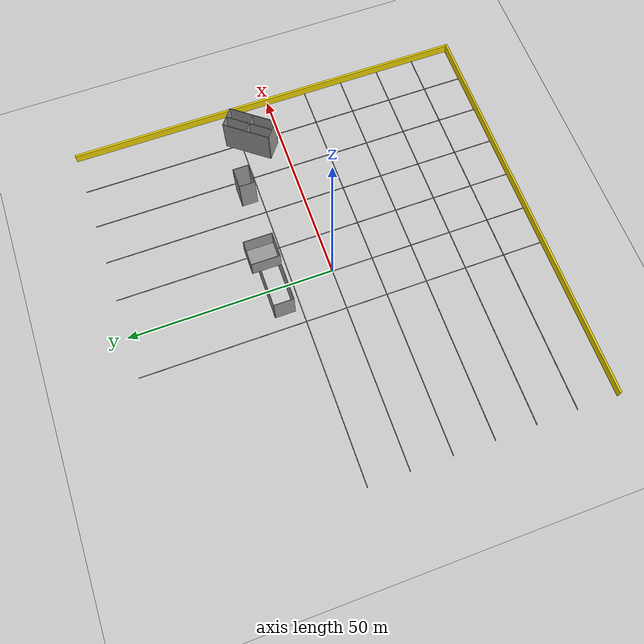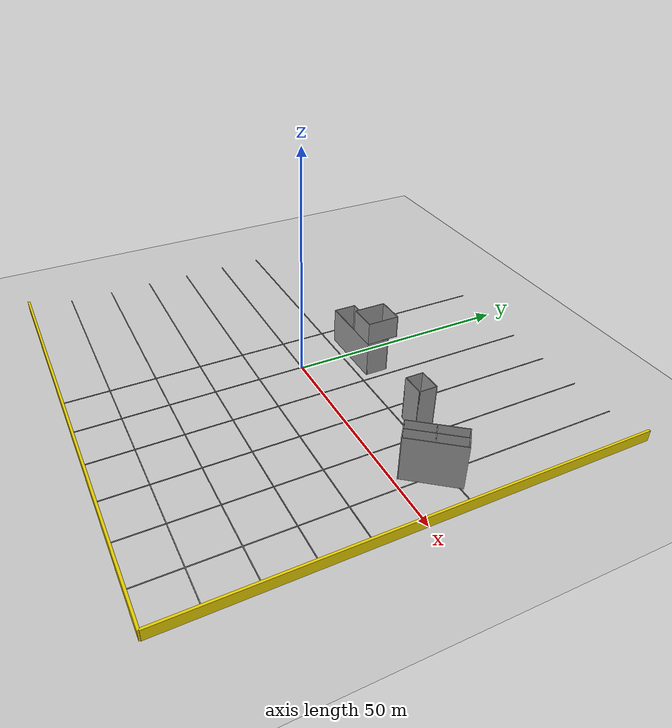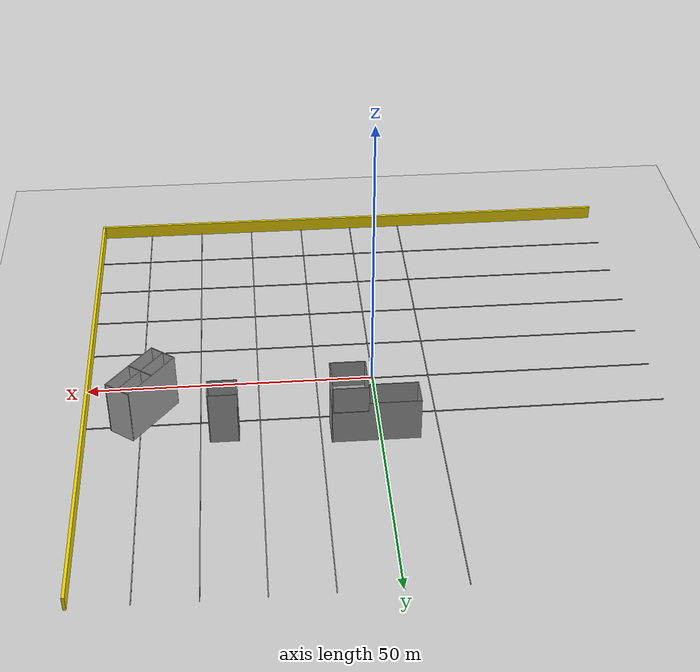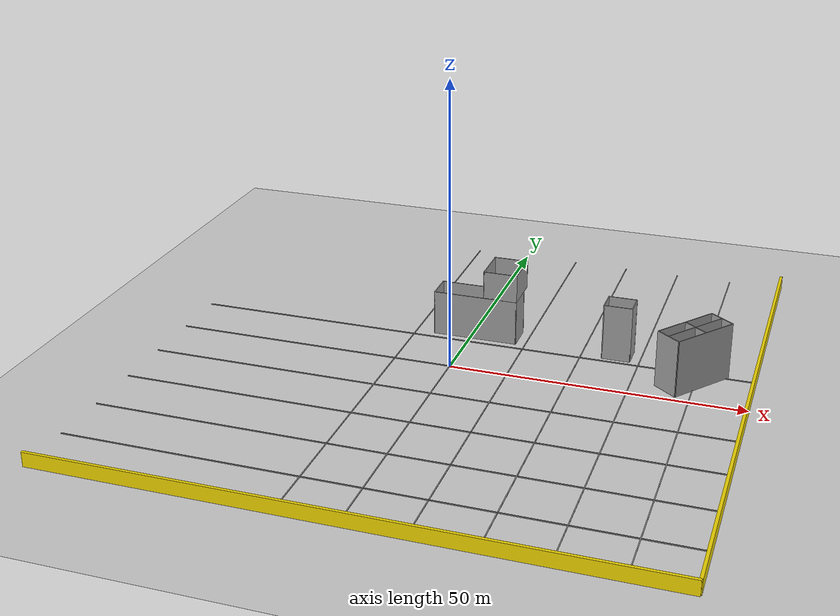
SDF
<sdf version="1.7">
 <world name="default">
  <model name="ground_plane">
   <static>1</static>
   <link name="link">
    <collision name="collision">
     <geometry><plane><normal>0 0 1</normal><size>100 100</size></plane></geometry>
     <surface><friction><ode><mu>100</mu><mu2>50</mu2></ode></friction></surface>
    </collision>
    <visual name="visual">
     <cast_shadows>0</cast_shadows>
     <geometry><plane><normal>0 0 1</normal><size>100 100</size></plane></geometry>
     <material>
      <script><uri>file://media/materials/scripts/gazebo.material</uri><name>Gazebo/Grey</name></script>
     </material>
    </visual>
   </link>
  </model>
  <model name="gridline100m">
   <pose>0.007876 -6.97538 0 0 -0 0</pose>
   <link name="Wall_2">
    <collision name="Wall_2_Collision">
     <geometry><box><size>100 0.15 0.15</size></box></geometry>
     <pose>0 0 0.075 0 -0 0</pose>
    </collision>
    <visual name="Wall_2_Visual">
     <pose>0 0 0.075 0 -0 0</pose>
     <geometry><box><size>100 0.15 0.15</size></box></geometry>
     <material>
      <script><uri>file://media/materials/scripts/gazebo.material</uri><name>Gazebo/Grey</name></script>
      <ambient>0 0 0 1</ambient>
     </material>
     <meta><layer>0</layer></meta>
    </visual>
    <pose>2e-06 -3.05812 0 0 -0 0</pose>
   </link>
   <static>1</static>
  </model>
  <model name="gridline100m_clone">
   <pose>0.013 3.08479 0 0 -0 0</pose>
   <link name="Wall_2">
    <collision name="Wall_2_Collision">
     <geometry><box><size>100 0.15 0.15</size></box></geometry>
     <pose>0 0 0.075 0 -0 0</pose>
    </collision>
    <visual name="Wall_2_Visual">
     <pose>0 0 0.075 0 -0 0</pose>
     <geometry><box><size>100 0.15 0.15</size></box></geometry>
     <material>
      <script><uri>file://media/materials/scripts/gazebo.material</uri><name>Gazebo/Grey</name></script>
      <ambient>0 0 0 1</ambient>
     </material>
     <meta><layer>0</layer></meta>
    </visual>
    <pose>2e-06 -3.05812 0 0 -0 0</pose>
   </link>
   <static>1</static>
  </model>
  <model name="gridline100m_clone_0">
   <pose>-0.011254 13.0129 0 0 -0 0</pose>
   <link name="Wall_2">
    <collision name="Wall_2_Collision">
     <geometry><box><size>100 0.15 0.15</size></box></geometry>
     <pose>0 0 0.075 0 -0 0</pose>
    </collision>
    <visual name="Wall_2_Visual">
     <pose>0 0 0.075 0 -0 0</pose>
     <geometry><box><size>100 0.15 0.15</size></box></geometry>
     <material>
      <script><uri>file://media/materials/scripts/gazebo.material</uri><name>Gazebo/Grey</name></script>
      <ambient>0 0 0 1</ambient>
     </material>
     <meta><layer>0</layer></meta>
    </visual>
    <pose>2e-06 -3.05812 0 0 -0 0</pose>
   </link>
   <static>1</static>
  </model>
  <model name="gridline100m_clone_0_clone">
   <link name="Wall_2">
    <pose>2e-06 -3.05812 0 0 -0 1.571</pose>
    <inertial>
     <mass>1</mass>
     <inertia><ixx>1</ixx><ixy>0</ixy><ixz>0</ixz><iyy>1</iyy><iyz>0</iyz><izz>1</izz></inertia>
    </inertial>
    <visual name="Wall_2_Visual">
     <pose>0 0 0.075 0 -0 0</pose>
     <geometry><box><size>100 0.15 0.15</size></box></geometry>
     <material>
      <script><uri>file://media/materials/scripts/gazebo.material</uri><name>Gazebo/Grey</name></script>
      <ambient>0 0 0 1</ambient>
      <shader type="pixel"><normal_map>__default__</normal_map></shader>
      <diffuse>0.7 0.7 0.7 1</diffuse>
      <specular>0.01 0.01 0.01 1</specular>
      <emissive>0 0 0 1</emissive>
     </material>
     <meta><layer>0</layer></meta>
    </visual>
    <collision name="Wall_2_Collision">
     <pose>0 0 0.075 0 -0 0</pose>
     <geometry><box><size>100 0.15 0.15</size></box></geometry>
     <surface>
      <friction>
       <ode><mu>1</mu><mu2>1</mu2><fdir1>0 0 0</fdir1><slip1>0</slip1><slip2>0</slip2></ode>
       <torsional>
        <coefficient>1</coefficient>
        <patch_radius>0</patch_radius>
        <surface_radius>0</surface_radius>
        <use_patch_radius>1</use_patch_radius>
        <ode><slip>0</slip></ode>
       </torsional>
      </friction>
      <bounce><restitution_coefficient>0</restitution_coefficient><threshold>1e+06</threshold></bounce>
      <contact>
       <collide_without_contact>0</collide_without_contact>
       <collide_without_contact_bitmask>1</collide_without_contact_bitmask>
       <collide_bitmask>1</collide_bitmask>
       <ode>
        <soft_cfm>0</soft_cfm>
        <soft_erp>0.2</soft_erp>
        <kp>1e+13</kp>
        <kd>1</kd>
        <max_vel>0.01</max_vel>
        <min_depth>0</min_depth>
       </ode>
       <bullet>
        <split_impulse>1</split_impulse>
        <split_impulse_penetration_threshold>-0.01</split_impulse_penetration_threshold>
        <soft_cfm>0</soft_cfm>
        <soft_erp>0.2</soft_erp>
        <kp>1e+13</kp>
        <kd>1</kd>
       </bullet>
      </contact>
     </surface>
    </collision>
   </link>
   <static>1</static>
   <pose>9.93727 3.17557 0 0 -0 0</pose>
  </model>
  <model name="gridline100m_clone_0_clone_clone">
   <link name="Wall_2">
    <pose>2e-06 -3.05812 0 0 -0 1.571</pose>
    <inertial>
     <mass>1</mass>
     <inertia><ixx>1</ixx><ixy>0</ixy><ixz>0</ixz><iyy>1</iyy><iyz>0</iyz><izz>1</izz></inertia>
    </inertial>
    <visual name="Wall_2_Visual">
     <pose>0 0 0.075 0 -0 0</pose>
     <geometry><box><size>100 0.15 0.15</size></box></geometry>
     <material>
      <script><uri>file://media/materials/scripts/gazebo.material</uri><name>Gazebo/Grey</name></script>
      <ambient>0 0 0 1</ambient>
      <shader type="pixel"><normal_map>__default__</normal_map></shader>
      <diffuse>0.7 0.7 0.7 1</diffuse>
      <specular>0.01 0.01 0.01 1</specular>
      <emissive>0 0 0 1</emissive>
     </material>
     <meta><layer>0</layer></meta>
    </visual>
    <collision name="Wall_2_Collision">
     <pose>0 0 0.075 0 -0 0</pose>
     <geometry><box><size>100 0.15 0.15</size></box></geometry>
     <surface>
      <friction>
       <ode><mu>1</mu><mu2>1</mu2><fdir1>0 0 0</fdir1><slip1>0</slip1><slip2>0</slip2></ode>
       <torsional>
        <coefficient>1</coefficient>
        <patch_radius>0</patch_radius>
        <surface_radius>0</surface_radius>
        <use_patch_radius>1</use_patch_radius>
        <ode><slip>0</slip></ode>
       </torsional>
      </friction>
      <bounce><restitution_coefficient>0</restitution_coefficient><threshold>1e+06</threshold></bounce>
      <contact>
       <collide_without_contact>0</collide_without_contact>
       <collide_without_contact_bitmask>1</collide_without_contact_bitmask>
       <collide_bitmask>1</collide_bitmask>
       <ode>
        <soft_cfm>0</soft_cfm>
        <soft_erp>0.2</soft_erp>
        <kp>1e+13</kp>
        <kd>1</kd>
        <max_vel>0.01</max_vel>
        <min_depth>0</min_depth>
       </ode>
       <bullet>
        <split_impulse>1</split_impulse>
        <split_impulse_penetration_threshold>-0.01</split_impulse_penetration_threshold>
        <soft_cfm>0</soft_cfm>
        <soft_erp>0.2</soft_erp>
        <kp>1e+13</kp>
        <kd>1</kd>
       </bullet>
      </contact>
     </surface>
    </collision>
   </link>
   <static>1</static>
   <pose>-0.08355 3.18147 0 0 -0 0</pose>
  </model>
  <model name="gridline100m_clone_0_clone_clone_0">
   <link name="Wall_2">
    <pose>2e-06 -3.05812 0 0 -0 1.571</pose>
    <inertial>
     <mass>1</mass>
     <inertia><ixx>1</ixx><ixy>0</ixy><ixz>0</ixz><iyy>1</iyy><iyz>0</iyz><izz>1</izz></inertia>
    </inertial>
    <visual name="Wall_2_Visual">
     <pose>0 0 0.075 0 -0 0</pose>
     <geometry><box><size>100 0.15 0.15</size></box></geometry>
     <material>
      <script><uri>file://media/materials/scripts/gazebo.material</uri><name>Gazebo/Grey</name></script>
      <ambient>0 0 0 1</ambient>
      <shader type="pixel"><normal_map>__default__</normal_map></shader>
      <diffuse>0.7 0.7 0.7 1</diffuse>
      <specular>0.01 0.01 0.01 1</specular>
      <emissive>0 0 0 1</emissive>
     </material>
     <meta><layer>0</layer></meta>
    </visual>
    <collision name="Wall_2_Collision">
     <pose>0 0 0.075 0 -0 0</pose>
     <geometry><box><size>100 0.15 0.15</size></box></geometry>
     <surface>
      <friction>
       <ode><mu>1</mu><mu2>1</mu2><fdir1>0 0 0</fdir1><slip1>0</slip1><slip2>0</slip2></ode>
       <torsional>
        <coefficient>1</coefficient>
        <patch_radius>0</patch_radius>
        <surface_radius>0</surface_radius>
        <use_patch_radius>1</use_patch_radius>
        <ode><slip>0</slip></ode>
       </torsional>
      </friction>
      <bounce><restitution_coefficient>0</restitution_coefficient><threshold>1e+06</threshold></bounce>
      <contact>
       <collide_without_contact>0</collide_without_contact>
       <collide_without_contact_bitmask>1</collide_without_contact_bitmask>
       <collide_bitmask>1</collide_bitmask>
       <ode>
        <soft_cfm>0</soft_cfm>
        <soft_erp>0.2</soft_erp>
        <kp>1e+13</kp>
        <kd>1</kd>
        <max_vel>0.01</max_vel>
        <min_depth>0</min_depth>
       </ode>
       <bullet>
        <split_impulse>1</split_impulse>
        <split_impulse_penetration_threshold>-0.01</split_impulse_penetration_threshold>
        <soft_cfm>0</soft_cfm>
        <soft_erp>0.2</soft_erp>
        <kp>1e+13</kp>
        <kd>1</kd>
       </bullet>
      </contact>
     </surface>
    </collision>
   </link>
   <static>1</static>
   <pose>-9.96377 3.09569 0 0 -0 0</pose>
  </model>
  <model name="gridline100m_clone_0_clone_clone_1">
   <link name="Wall_2">
    <pose>2e-06 -3.05812 0 0 -0 1.571</pose>
    <inertial>
     <mass>1</mass>
     <inertia><ixx>1</ixx><ixy>0</ixy><ixz>0</ixz><iyy>1</iyy><iyz>0</iyz><izz>1</izz></inertia>
    </inertial>
    <visual name="Wall_2_Visual">
     <pose>0 0 0.075 0 -0 0</pose>
     <geometry><box><size>100 0.15 0.15</size></box></geometry>
     <material>
      <script><uri>file://media/materials/scripts/gazebo.material</uri><name>Gazebo/Grey</name></script>
      <ambient>0 0 0 1</ambient>
      <shader type="pixel"><normal_map>__default__</normal_map></shader>
      <diffuse>0.7 0.7 0.7 1</diffuse>
      <specular>0.01 0.01 0.01 1</specular>
      <emissive>0 0 0 1</emissive>
     </material>
     <meta><layer>0</layer></meta>
    </visual>
    <collision name="Wall_2_Collision">
     <pose>0 0 0.075 0 -0 0</pose>
     <geometry><box><size>100 0.15 0.15</size></box></geometry>
     <surface>
      <friction>
       <ode><mu>1</mu><mu2>1</mu2><fdir1>0 0 0</fdir1><slip1>0</slip1><slip2>0</slip2></ode>
       <torsional>
        <coefficient>1</coefficient>
        <patch_radius>0</patch_radius>
        <surface_radius>0</surface_radius>
        <use_patch_radius>1</use_patch_radius>
        <ode><slip>0</slip></ode>
       </torsional>
      </friction>
      <bounce><restitution_coefficient>0</restitution_coefficient><threshold>1e+06</threshold></bounce>
      <contact>
       <collide_without_contact>0</collide_without_contact>
       <collide_without_contact_bitmask>1</collide_without_contact_bitmask>
       <collide_bitmask>1</collide_bitmask>
       <ode>
        <soft_cfm>0</soft_cfm>
        <soft_erp>0.2</soft_erp>
        <kp>1e+13</kp>
        <kd>1</kd>
        <max_vel>0.01</max_vel>
        <min_depth>0</min_depth>
       </ode>
       <bullet>
        <split_impulse>1</split_impulse>
        <split_impulse_penetration_threshold>-0.01</split_impulse_penetration_threshold>
        <soft_cfm>0</soft_cfm>
        <soft_erp>0.2</soft_erp>
        <kp>1e+13</kp>
        <kd>1</kd>
       </bullet>
      </contact>
     </surface>
    </collision>
   </link>
   <static>1</static>
   <pose>20.1147 3.10463 0 0 -0 0</pose>
  </model>
  <model name="gridline100m_clone_0_clone_clone_1_clone">
   <link name="Wall_2">
    <pose>2e-06 -3.05812 0 0 -0 1.571</pose>
    <inertial>
     <mass>1</mass>
     <inertia><ixx>1</ixx><ixy>0</ixy><ixz>0</ixz><iyy>1</iyy><iyz>0</iyz><izz>1</izz></inertia>
    </inertial>
    <visual name="Wall_2_Visual">
     <pose>0 0 0.075 0 -0 0</pose>
     <geometry><box><size>100 0.15 0.15</size></box></geometry>
     <material>
      <script><uri>file://media/materials/scripts/gazebo.material</uri><name>Gazebo/Grey</name></script>
      <ambient>0 0 0 1</ambient>
      <shader type="pixel"><normal_map>__default__</normal_map></shader>
      <diffuse>0.7 0.7 0.7 1</diffuse>
      <specular>0.01 0.01 0.01 1</specular>
      <emissive>0 0 0 1</emissive>
     </material>
     <meta><layer>0</layer></meta>
    </visual>
    <collision name="Wall_2_Collision">
     <pose>0 0 0.075 0 -0 0</pose>
     <geometry><box><size>100 0.15 0.15</size></box></geometry>
     <surface>
      <friction>
       <ode><mu>1</mu><mu2>1</mu2><fdir1>0 0 0</fdir1><slip1>0</slip1><slip2>0</slip2></ode>
       <torsional>
        <coefficient>1</coefficient>
        <patch_radius>0</patch_radius>
        <surface_radius>0</surface_radius>
        <use_patch_radius>1</use_patch_radius>
        <ode><slip>0</slip></ode>
       </torsional>
      </friction>
      <bounce><restitution_coefficient>0</restitution_coefficient><threshold>1e+06</threshold></bounce>
      <contact>
       <collide_without_contact>0</collide_without_contact>
       <collide_without_contact_bitmask>1</collide_without_contact_bitmask>
       <collide_bitmask>1</collide_bitmask>
       <ode>
        <soft_cfm>0</soft_cfm>
        <soft_erp>0.2</soft_erp>
        <kp>1e+13</kp>
        <kd>1</kd>
        <max_vel>0.01</max_vel>
        <min_depth>0</min_depth>
       </ode>
       <bullet>
        <split_impulse>1</split_impulse>
        <split_impulse_penetration_threshold>-0.01</split_impulse_penetration_threshold>
        <soft_cfm>0</soft_cfm>
        <soft_erp>0.2</soft_erp>
        <kp>1e+13</kp>
        <kd>1</kd>
       </bullet>
      </contact>
     </surface>
    </collision>
   </link>
   <static>1</static>
   <pose>30.2145 3.13489 0 0 -0 0</pose>
  </model>
  <model name="gridline100m_clone_0_clone_clone_1_clone_clone">
   <link name="Wall_2">
    <pose>2e-06 -3.05812 0 0 -0 1.571</pose>
    <inertial>
     <mass>1</mass>
     <inertia><ixx>1</ixx><ixy>0</ixy><ixz>0</ixz><iyy>1</iyy><iyz>0</iyz><izz>1</izz></inertia>
    </inertial>
    <visual name="Wall_2_Visual">
     <pose>0 0 0.075 0 -0 0</pose>
     <geometry><box><size>100 0.15 0.15</size></box></geometry>
     <material>
      <script><uri>file://media/materials/scripts/gazebo.material</uri><name>Gazebo/Grey</name></script>
      <ambient>0 0 0 1</ambient>
      <shader type="pixel"><normal_map>__default__</normal_map></shader>
      <diffuse>0.7 0.7 0.7 1</diffuse>
      <specular>0.01 0.01 0.01 1</specular>
      <emissive>0 0 0 1</emissive>
     </material>
     <meta><layer>0</layer></meta>
    </visual>
    <collision name="Wall_2_Collision">
     <pose>0 0 0.075 0 -0 0</pose>
     <geometry><box><size>100 0.15 0.15</size></box></geometry>
     <surface>
      <friction>
       <ode><mu>1</mu><mu2>1</mu2><fdir1>0 0 0</fdir1><slip1>0</slip1><slip2>0</slip2></ode>
       <torsional>
        <coefficient>1</coefficient>
        <patch_radius>0</patch_radius>
        <surface_radius>0</surface_radius>
        <use_patch_radius>1</use_patch_radius>
        <ode><slip>0</slip></ode>
       </torsional>
      </friction>
      <bounce><restitution_coefficient>0</restitution_coefficient><threshold>1e+06</threshold></bounce>
      <contact>
       <collide_without_contact>0</collide_without_contact>
       <collide_without_contact_bitmask>1</collide_without_contact_bitmask>
       <collide_bitmask>1</collide_bitmask>
       <ode>
        <soft_cfm>0</soft_cfm>
        <soft_erp>0.2</soft_erp>
        <kp>1e+13</kp>
        <kd>1</kd>
        <max_vel>0.01</max_vel>
        <min_depth>0</min_depth>
       </ode>
       <bullet>
        <split_impulse>1</split_impulse>
        <split_impulse_penetration_threshold>-0.01</split_impulse_penetration_threshold>
        <soft_cfm>0</soft_cfm>
        <soft_erp>0.2</soft_erp>
        <kp>1e+13</kp>
        <kd>1</kd>
       </bullet>
      </contact>
     </surface>
    </collision>
   </link>
   <static>1</static>
   <pose>40.3256 3.07649 0 0 -0 0</pose>
  </model>
  <model name="gridline100m_clone_1">
   <pose>-0.046986 -16.9532 0 0 -0 0</pose>
   <link name="Wall_2">
    <collision name="Wall_2_Collision">
     <geometry><box><size>100 0.15 0.15</size></box></geometry>
     <pose>0 0 0.075 0 -0 0</pose>
    </collision>
    <visual name="Wall_2_Visual">
     <pose>0 0 0.075 0 -0 0</pose>
     <geometry><box><size>100 0.15 0.15</size></box></geometry>
     <material>
      <script><uri>file://media/materials/scripts/gazebo.material</uri><name>Gazebo/Grey</name></script>
      <ambient>0 0 0 1</ambient>
     </material>
     <meta><layer>0</layer></meta>
    </visual>
    <pose>2e-06 -3.05812 0 0 -0 0</pose>
   </link>
   <static>1</static>
  </model>
  <model name="gridline100m_clone_1_clone">
   <pose>0.0391 -26.9723 0 0 -0 0</pose>
   <link name="Wall_2">
    <collision name="Wall_2_Collision">
     <geometry><box><size>100 0.15 0.15</size></box></geometry>
     <pose>0 0 0.075 0 -0 0</pose>
    </collision>
    <visual name="Wall_2_Visual">
     <pose>0 0 0.075 0 -0 0</pose>
     <geometry><box><size>100 0.15 0.15</size></box></geometry>
     <material>
      <script><uri>file://media/materials/scripts/gazebo.material</uri><name>Gazebo/Grey</name></script>
      <ambient>0 0 0 1</ambient>
     </material>
     <meta><layer>0</layer></meta>
    </visual>
    <pose>2e-06 -3.05812 0 0 -0 0</pose>
   </link>
   <static>1</static>
  </model>
  <model name="gridline100m_clone_1_clone_clone">
   <pose>-0.033098 -36.9108 0 0 -0 0</pose>
   <link name="Wall_2">
    <collision name="Wall_2_Collision">
     <geometry><box><size>100 0.15 0.15</size></box></geometry>
     <pose>0 0 0.075 0 -0 0</pose>
    </collision>
    <visual name="Wall_2_Visual">
     <pose>0 0 0.075 0 -0 0</pose>
     <geometry><box><size>100 0.15 0.15</size></box></geometry>
     <material>
      <script><uri>file://media/materials/scripts/gazebo.material</uri><name>Gazebo/Grey</name></script>
      <ambient>0 0 0 1</ambient>
     </material>
     <meta><layer>0</layer></meta>
    </visual>
    <pose>2e-06 -3.05812 0 0 -0 0</pose>
   </link>
   <static>1</static>
  </model>
  <model name="100mfence">
   <link name="Wall_0">
    <pose>-2e-06 -1.2425 0 0 -0 0</pose>
    <inertial>
     <mass>1</mass>
     <inertia><ixx>1</ixx><ixy>0</ixy><ixz>0</ixz><iyy>1</iyy><iyz>0</iyz><izz>1</izz></inertia>
    </inertial>
    <visual name="Wall_0_Visual">
     <pose>0 0 1.25 0 -0 0</pose>
     <geometry><box><size>100 0.5 2.5</size></box></geometry>
     <material>
      <script><uri>file://media/materials/scripts/gazebo.material</uri><name>Gazebo/Grey</name></script>
      <ambient>0.929 0.831 0 1</ambient>
      <shader type="pixel"><normal_map>__default__</normal_map></shader>
      <diffuse>0.7 0.7 0.7 1</diffuse>
      <specular>0.01 0.01 0.01 1</specular>
      <emissive>0 0 0 1</emissive>
     </material>
     <meta><layer>0</layer></meta>
    </visual>
    <collision name="Wall_0_Collision">
     <pose>0 0 1.25 0 -0 0</pose>
     <geometry><box><size>100 0.15 2.5</size></box></geometry>
     <surface>
      <friction>
       <ode><mu>1</mu><mu2>1</mu2><fdir1>0 0 0</fdir1><slip1>0</slip1><slip2>0</slip2></ode>
       <torsional>
        <coefficient>1</coefficient>
        <patch_radius>0</patch_radius>
        <surface_radius>0</surface_radius>
        <use_patch_radius>1</use_patch_radius>
        <ode><slip>0</slip></ode>
       </torsional>
      </friction>
      <bounce><restitution_coefficient>0</restitution_coefficient><threshold>1e+06</threshold></bounce>
      <contact>
       <collide_without_contact>0</collide_without_contact>
       <collide_without_contact_bitmask>1</collide_without_contact_bitmask>
       <collide_bitmask>1</collide_bitmask>
       <ode>
        <soft_cfm>0</soft_cfm>
        <soft_erp>0.2</soft_erp>
        <kp>1e+13</kp>
        <kd>1</kd>
        <max_vel>0.01</max_vel>
        <min_depth>0</min_depth>
       </ode>
       <bullet>
        <split_impulse>1</split_impulse>
        <split_impulse_penetration_threshold>-0.01</split_impulse_penetration_threshold>
        <soft_cfm>0</soft_cfm>
        <soft_erp>0.2</soft_erp>
        <kp>1e+13</kp>
        <kd>1</kd>
       </bullet>
      </contact>
     </surface>
    </collision>
   </link>
   <static>1</static>
   <pose>-0.048199 -48.6494 0 0 -0 0</pose>
  </model>
  <model name="100mfence_clone_clone_clone">
   <link name="Wall_0">
    <pose>-13.0161 -13.4589 0 0 -0 1.571</pose>
    <inertial>
     <mass>75000</mass>
     <inertia>
      <ixx>39203.1</ixx>
      <ixy>0</ixy>
      <ixz>0</ixz>
      <iyy>6.25391e+07</iyy>
      <iyz>0</iyz>
      <izz>6.25001e+07</izz>
     </inertia>
    </inertial>
    <visual name="Wall_0_Visual">
     <pose>0 0 1.25 0 -0 0</pose>
     <geometry><box><size>100 0.5 2.5</size></box></geometry>
     <material>
      <script><uri>file://media/materials/scripts/gazebo.material</uri><name>Gazebo/Grey</name></script>
      <ambient>0.929 0.831 0 1</ambient>
      <shader type="pixel"><normal_map>__default__</normal_map></shader>
      <diffuse>0.7 0.7 0.7 1</diffuse>
      <specular>0.01 0.01 0.01 1</specular>
      <emissive>0 0 0 1</emissive>
     </material>
     <meta><layer>0</layer></meta>
    </visual>
    <collision name="Wall_0_Collision">
     <pose>0 0 1.25 0 -0 0</pose>
     <geometry><box><size>100 0.2 2.5</size></box></geometry>
     <surface>
      <friction>
       <ode><mu>1</mu><mu2>1</mu2><fdir1>0 0 0</fdir1><slip1>0</slip1><slip2>0</slip2></ode>
       <torsional>
        <coefficient>1</coefficient>
        <patch_radius>0</patch_radius>
        <surface_radius>0</surface_radius>
        <use_patch_radius>1</use_patch_radius>
        <ode><slip>0</slip></ode>
       </torsional>
      </friction>
      <bounce><restitution_coefficient>0</restitution_coefficient><threshold>1e+06</threshold></bounce>
      <contact>
       <collide_without_contact>0</collide_without_contact>
       <collide_without_contact_bitmask>1</collide_without_contact_bitmask>
       <collide_bitmask>1</collide_bitmask>
       <ode>
        <soft_cfm>0</soft_cfm>
        <soft_erp>0.2</soft_erp>
        <kp>1e+13</kp>
        <kd>1</kd>
        <max_vel>0.01</max_vel>
        <min_depth>0</min_depth>
       </ode>
       <bullet>
        <split_impulse>1</split_impulse>
        <split_impulse_penetration_threshold>-0.01</split_impulse_penetration_threshold>
        <soft_cfm>0</soft_cfm>
        <soft_erp>0.2</soft_erp>
        <kp>1e+13</kp>
        <kd>1</kd>
       </bullet>
      </contact>
     </surface>
    </collision>
   </link>
   <static>1</static>
   <pose>62.8409 13.6369 0 0 -0 0</pose>
  </model>
  <model name="multistory1_clone">
   <link name="Floor_6">
    <pose>4.5 0 8 0 -0 0</pose>
    <visual name="Floor_6_Visual">
     <pose>0 0 0.05 0 -0 0</pose>
     <geometry><box><size>6 7 0.1</size></box></geometry>
     <material>
      <script><uri>file://media/materials/scripts/gazebo.material</uri><name>Gazebo/Grey</name></script>
      <ambient>0 0 0 1</ambient>
      <shader type="pixel"/>
     </material>
     <meta><layer>1</layer></meta>
    </visual>
    <collision name="Floor_6_Collision">
     <pose>0 0 0.05 0 -0 0</pose>
     <geometry><box><size>6 7 0.1</size></box></geometry>
     <surface>
      <friction>
       <ode><mu>1</mu><mu2>1</mu2><fdir1>0 0 0</fdir1><slip1>0</slip1><slip2>0</slip2></ode>
       <torsional>
        <coefficient>1</coefficient>
        <patch_radius>0</patch_radius>
        <surface_radius>0</surface_radius>
        <use_patch_radius>1</use_patch_radius>
        <ode><slip>0</slip></ode>
       </torsional>
      </friction>
      <bounce><restitution_coefficient>0</restitution_coefficient><threshold>1e+06</threshold></bounce>
      <contact>
       <collide_without_contact>0</collide_without_contact>
       <collide_without_contact_bitmask>1</collide_without_contact_bitmask>
       <collide_bitmask>1</collide_bitmask>
       <ode>
        <soft_cfm>0</soft_cfm>
        <soft_erp>0.2</soft_erp>
        <kp>1e+13</kp>
        <kd>1</kd>
        <max_vel>0.01</max_vel>
        <min_depth>0</min_depth>
       </ode>
       <bullet>
        <split_impulse>1</split_impulse>
        <split_impulse_penetration_threshold>-0.01</split_impulse_penetration_threshold>
        <soft_cfm>0</soft_cfm>
        <soft_erp>0.2</soft_erp>
        <kp>1e+13</kp>
        <kd>1</kd>
       </bullet>
      </contact>
     </surface>
    </collision>
   </link>
   <link name="Wall_1">
    <pose>0 -3.425 0 0 -0 0</pose>
    <visual name="Wall_1_Visual">
     <pose>0 0 4 0 -0 0</pose>
     <geometry><box><size>15 0.15 8</size></box></geometry>
     <material>
      <script><uri>file://media/materials/scripts/gazebo.material</uri><name>Gazebo/Grey</name></script>
      <ambient>0 0 0 1</ambient>
      <shader type="pixel"/>
     </material>
     <meta><layer>0</layer></meta>
    </visual>
    <collision name="Wall_1_Collision">
     <pose>0 0 4 0 -0 0</pose>
     <geometry><box><size>15 0.15 8</size></box></geometry>
     <surface>
      <friction>
       <ode><mu>1</mu><mu2>1</mu2><fdir1>0 0 0</fdir1><slip1>0</slip1><slip2>0</slip2></ode>
       <torsional>
        <coefficient>1</coefficient>
        <patch_radius>0</patch_radius>
        <surface_radius>0</surface_radius>
        <use_patch_radius>1</use_patch_radius>
        <ode><slip>0</slip></ode>
       </torsional>
      </friction>
      <bounce><restitution_coefficient>0</restitution_coefficient><threshold>1e+06</threshold></bounce>
      <contact>
       <collide_without_contact>0</collide_without_contact>
       <collide_without_contact_bitmask>1</collide_without_contact_bitmask>
       <collide_bitmask>1</collide_bitmask>
       <ode>
        <soft_cfm>0</soft_cfm>
        <soft_erp>0.2</soft_erp>
        <kp>1e+13</kp>
        <kd>1</kd>
        <max_vel>0.01</max_vel>
        <min_depth>0</min_depth>
       </ode>
       <bullet>
        <split_impulse>1</split_impulse>
        <split_impulse_penetration_threshold>-0.01</split_impulse_penetration_threshold>
        <soft_cfm>0</soft_cfm>
        <soft_erp>0.2</soft_erp>
        <kp>1e+13</kp>
        <kd>1</kd>
       </bullet>
      </contact>
     </surface>
    </collision>
   </link>
   <link name="Wall_2">
    <pose>7.425 -1 0 0 -0 1.5708</pose>
    <visual name="Wall_2_Visual">
     <pose>0 0 4 0 -0 0</pose>
     <geometry><box><size>5 0.15 8</size></box></geometry>
     <material>
      <script><uri>file://media/materials/scripts/gazebo.material</uri><name>Gazebo/Grey</name></script>
      <ambient>0 0 0 1</ambient>
      <shader type="pixel"/>
     </material>
     <meta><layer>0</layer></meta>
    </visual>
    <collision name="Wall_2_Collision">
     <pose>0 0 4 0 -0 0</pose>
     <geometry><box><size>5 0.15 8</size></box></geometry>
     <surface>
      <friction>
       <ode><mu>1</mu><mu2>1</mu2><fdir1>0 0 0</fdir1><slip1>0</slip1><slip2>0</slip2></ode>
       <torsional>
        <coefficient>1</coefficient>
        <patch_radius>0</patch_radius>
        <surface_radius>0</surface_radius>
        <use_patch_radius>1</use_patch_radius>
        <ode><slip>0</slip></ode>
       </torsional>
      </friction>
      <bounce><restitution_coefficient>0</restitution_coefficient><threshold>1e+06</threshold></bounce>
      <contact>
       <collide_without_contact>0</collide_without_contact>
       <collide_without_contact_bitmask>1</collide_without_contact_bitmask>
       <collide_bitmask>1</collide_bitmask>
       <ode>
        <soft_cfm>0</soft_cfm>
        <soft_erp>0.2</soft_erp>
        <kp>1e+13</kp>
        <kd>1</kd>
        <max_vel>0.01</max_vel>
        <min_depth>0</min_depth>
       </ode>
       <bullet>
        <split_impulse>1</split_impulse>
        <split_impulse_penetration_threshold>-0.01</split_impulse_penetration_threshold>
        <soft_cfm>0</soft_cfm>
        <soft_erp>0.2</soft_erp>
        <kp>1e+13</kp>
        <kd>1</kd>
       </bullet>
      </contact>
     </surface>
    </collision>
   </link>
   <link name="Wall_37">
    <pose>7.425 0 8 0 -0 1.5708</pose>
    <visual name="Wall_37_Visual">
     <pose>0 0 2.5 0 -0 0</pose>
     <geometry><box><size>7 0.15 5</size></box></geometry>
     <material>
      <script><uri>file://media/materials/scripts/gazebo.material</uri><name>Gazebo/Grey</name></script>
      <ambient>0 0 0 1</ambient>
      <shader type="pixel"/>
     </material>
     <meta><layer>1</layer></meta>
    </visual>
    <collision name="Wall_37_Collision">
     <pose>0 0 2.5 0 -0 0</pose>
     <geometry><box><size>7 0.15 5</size></box></geometry>
     <surface>
      <friction>
       <ode><mu>1</mu><mu2>1</mu2><fdir1>0 0 0</fdir1><slip1>0</slip1><slip2>0</slip2></ode>
       <torsional>
        <coefficient>1</coefficient>
        <patch_radius>0</patch_radius>
        <surface_radius>0</surface_radius>
        <use_patch_radius>1</use_patch_radius>
        <ode><slip>0</slip></ode>
       </torsional>
      </friction>
      <bounce><restitution_coefficient>0</restitution_coefficient><threshold>1e+06</threshold></bounce>
      <contact>
       <collide_without_contact>0</collide_without_contact>
       <collide_without_contact_bitmask>1</collide_without_contact_bitmask>
       <collide_bitmask>1</collide_bitmask>
       <ode>
        <soft_cfm>0</soft_cfm>
        <soft_erp>0.2</soft_erp>
        <kp>1e+13</kp>
        <kd>1</kd>
        <max_vel>0.01</max_vel>
        <min_depth>0</min_depth>
       </ode>
       <bullet>
        <split_impulse>1</split_impulse>
        <split_impulse_penetration_threshold>-0.01</split_impulse_penetration_threshold>
        <soft_cfm>0</soft_cfm>
        <soft_erp>0.2</soft_erp>
        <kp>1e+13</kp>
        <kd>1</kd>
       </bullet>
      </contact>
     </surface>
    </collision>
   </link>
   <link name="Wall_43">
    <pose>4.5 3.425 8 0 -0 3.14159</pose>
    <visual name="Wall_43_Visual">
     <pose>0 0 2.5 0 -0 0</pose>
     <geometry><box><size>6 0.15 5</size></box></geometry>
     <material>
      <script><uri>file://media/materials/scripts/gazebo.material</uri><name>Gazebo/Grey</name></script>
      <ambient>0 0 0 1</ambient>
      <shader type="pixel"/>
     </material>
     <meta><layer>1</layer></meta>
    </visual>
    <collision name="Wall_43_Collision">
     <pose>0 0 2.5 0 -0 0</pose>
     <geometry><box><size>6 0.15 5</size></box></geometry>
     <surface>
      <friction>
       <ode><mu>1</mu><mu2>1</mu2><fdir1>0 0 0</fdir1><slip1>0</slip1><slip2>0</slip2></ode>
       <torsional>
        <coefficient>1</coefficient>
        <patch_radius>0</patch_radius>
        <surface_radius>0</surface_radius>
        <use_patch_radius>1</use_patch_radius>
        <ode><slip>0</slip></ode>
       </torsional>
      </friction>
      <bounce><restitution_coefficient>0</restitution_coefficient><threshold>1e+06</threshold></bounce>
      <contact>
       <collide_without_contact>0</collide_without_contact>
       <collide_without_contact_bitmask>1</collide_without_contact_bitmask>
       <collide_bitmask>1</collide_bitmask>
       <ode>
        <soft_cfm>0</soft_cfm>
        <soft_erp>0.2</soft_erp>
        <kp>1e+13</kp>
        <kd>1</kd>
        <max_vel>0.01</max_vel>
        <min_depth>0</min_depth>
       </ode>
       <bullet>
        <split_impulse>1</split_impulse>
        <split_impulse_penetration_threshold>-0.01</split_impulse_penetration_threshold>
        <soft_cfm>0</soft_cfm>
        <soft_erp>0.2</soft_erp>
        <kp>1e+13</kp>
        <kd>1</kd>
       </bullet>
      </contact>
     </surface>
    </collision>
   </link>
   <link name="Wall_46">
    <pose>1.575 0 8 0 0 -1.5708</pose>
    <visual name="Wall_46_Visual">
     <pose>0 0 2.5 0 -0 0</pose>
     <geometry><box><size>7 0.15 5</size></box></geometry>
     <material>
      <script><uri>file://media/materials/scripts/gazebo.material</uri><name>Gazebo/Grey</name></script>
      <ambient>0 0 0 1</ambient>
      <shader type="pixel"/>
     </material>
     <meta><layer>1</layer></meta>
    </visual>
    <collision name="Wall_46_Collision">
     <pose>0 0 2.5 0 -0 0</pose>
     <geometry><box><size>7 0.15 5</size></box></geometry>
     <surface>
      <friction>
       <ode><mu>1</mu><mu2>1</mu2><fdir1>0 0 0</fdir1><slip1>0</slip1><slip2>0</slip2></ode>
       <torsional>
        <coefficient>1</coefficient>
        <patch_radius>0</patch_radius>
        <surface_radius>0</surface_radius>
        <use_patch_radius>1</use_patch_radius>
        <ode><slip>0</slip></ode>
       </torsional>
      </friction>
      <bounce><restitution_coefficient>0</restitution_coefficient><threshold>1e+06</threshold></bounce>
      <contact>
       <collide_without_contact>0</collide_without_contact>
       <collide_without_contact_bitmask>1</collide_without_contact_bitmask>
       <collide_bitmask>1</collide_bitmask>
       <ode>
        <soft_cfm>0</soft_cfm>
        <soft_erp>0.2</soft_erp>
        <kp>1e+13</kp>
        <kd>1</kd>
        <max_vel>0.01</max_vel>
        <min_depth>0</min_depth>
       </ode>
       <bullet>
        <split_impulse>1</split_impulse>
        <split_impulse_penetration_threshold>-0.01</split_impulse_penetration_threshold>
        <soft_cfm>0</soft_cfm>
        <soft_erp>0.2</soft_erp>
        <kp>1e+13</kp>
        <kd>1</kd>
       </bullet>
      </contact>
     </surface>
    </collision>
   </link>
   <link name="Wall_47">
    <pose>4.5 -3.425 8 0 -0 0</pose>
    <inertial>
     <mass>1</mass>
     <inertia><ixx>1</ixx><ixy>0</ixy><ixz>0</ixz><iyy>1</iyy><iyz>0</iyz><izz>1</izz></inertia>
    </inertial>
    <visual name="Wall_47_Visual">
     <pose>0 0 2.5 0 -0 0</pose>
     <geometry><box><size>6 0.15 5</size></box></geometry>
     <material>
      <script><uri>file://media/materials/scripts/gazebo.material</uri><name>Gazebo/Grey</name></script>
      <ambient>0 0 0 1</ambient>
      <shader type="pixel"><normal_map>__default__</normal_map></shader>
      <diffuse>0 0 0 1</diffuse>
      <specular>1 1 1 1</specular>
      <emissive>0 0 0 1</emissive>
     </material>
     <meta><layer>1</layer></meta>
    </visual>
    <collision name="Wall_47_Collision">
     <pose>0 0 2.5 0 -0 0</pose>
     <geometry><box><size>6 0.15 5</size></box></geometry>
     <surface>
      <friction>
       <ode><mu>1</mu><mu2>1</mu2><fdir1>0 0 0</fdir1><slip1>0</slip1><slip2>0</slip2></ode>
       <torsional>
        <coefficient>1</coefficient>
        <patch_radius>0</patch_radius>
        <surface_radius>0</surface_radius>
        <use_patch_radius>1</use_patch_radius>
        <ode><slip>0</slip></ode>
       </torsional>
      </friction>
      <bounce><restitution_coefficient>0</restitution_coefficient><threshold>1e+06</threshold></bounce>
      <contact>
       <collide_without_contact>0</collide_without_contact>
       <collide_without_contact_bitmask>1</collide_without_contact_bitmask>
       <collide_bitmask>1</collide_bitmask>
       <ode>
        <soft_cfm>0</soft_cfm>
        <soft_erp>0.2</soft_erp>
        <kp>1e+13</kp>
        <kd>1</kd>
        <max_vel>0.01</max_vel>
        <min_depth>0</min_depth>
       </ode>
       <bullet>
        <split_impulse>1</split_impulse>
        <split_impulse_penetration_threshold>-0.01</split_impulse_penetration_threshold>
        <soft_cfm>0</soft_cfm>
        <soft_erp>0.2</soft_erp>
        <kp>1e+13</kp>
        <kd>1</kd>
       </bullet>
      </contact>
     </surface>
    </collision>
   </link>
   <link name="Wall_5">
    <pose>0 1.425 0 0 -0 3.14159</pose>
    <visual name="Wall_5_Visual">
     <pose>0 0 4 0 -0 0</pose>
     <geometry><box><size>15 0.15 8</size></box></geometry>
     <material>
      <script><uri>file://media/materials/scripts/gazebo.material</uri><name>Gazebo/Grey</name></script>
      <ambient>0 0 0 1</ambient>
      <shader type="pixel"/>
     </material>
     <meta><layer>0</layer></meta>
    </visual>
    <collision name="Wall_5_Collision">
     <pose>0 0 4 0 -0 0</pose>
     <geometry><box><size>15 0.15 8</size></box></geometry>
     <surface>
      <friction>
       <ode><mu>1</mu><mu2>1</mu2><fdir1>0 0 0</fdir1><slip1>0</slip1><slip2>0</slip2></ode>
       <torsional>
        <coefficient>1</coefficient>
        <patch_radius>0</patch_radius>
        <surface_radius>0</surface_radius>
        <use_patch_radius>1</use_patch_radius>
        <ode><slip>0</slip></ode>
       </torsional>
      </friction>
      <bounce><restitution_coefficient>0</restitution_coefficient><threshold>1e+06</threshold></bounce>
      <contact>
       <collide_without_contact>0</collide_without_contact>
       <collide_without_contact_bitmask>1</collide_without_contact_bitmask>
       <collide_bitmask>1</collide_bitmask>
       <ode>
        <soft_cfm>0</soft_cfm>
        <soft_erp>0.2</soft_erp>
        <kp>1e+13</kp>
        <kd>1</kd>
        <max_vel>0.01</max_vel>
        <min_depth>0</min_depth>
       </ode>
       <bullet>
        <split_impulse>1</split_impulse>
        <split_impulse_penetration_threshold>-0.01</split_impulse_penetration_threshold>
        <soft_cfm>0</soft_cfm>
        <soft_erp>0.2</soft_erp>
        <kp>1e+13</kp>
        <kd>1</kd>
       </bullet>
      </contact>
     </surface>
    </collision>
   </link>
   <link name="Wall_6">
    <pose>-7.425 -1 0 0 0 -1.5708</pose>
    <visual name="Wall_6_Visual">
     <pose>0 0 4 0 -0 0</pose>
     <geometry><box><size>5 0.15 8</size></box></geometry>
     <material>
      <script><uri>file://media/materials/scripts/gazebo.material</uri><name>Gazebo/Grey</name></script>
      <ambient>0 0 0 1</ambient>
      <shader type="pixel"/>
     </material>
     <meta><layer>0</layer></meta>
    </visual>
    <collision name="Wall_6_Collision">
     <pose>0 0 4 0 -0 0</pose>
     <geometry><box><size>5 0.15 8</size></box></geometry>
     <surface>
      <friction>
       <ode><mu>1</mu><mu2>1</mu2><fdir1>0 0 0</fdir1><slip1>0</slip1><slip2>0</slip2></ode>
       <torsional>
        <coefficient>1</coefficient>
        <patch_radius>0</patch_radius>
        <surface_radius>0</surface_radius>
        <use_patch_radius>1</use_patch_radius>
        <ode><slip>0</slip></ode>
       </torsional>
      </friction>
      <bounce><restitution_coefficient>0</restitution_coefficient><threshold>1e+06</threshold></bounce>
      <contact>
       <collide_without_contact>0</collide_without_contact>
       <collide_without_contact_bitmask>1</collide_without_contact_bitmask>
       <collide_bitmask>1</collide_bitmask>
       <ode>
        <soft_cfm>0</soft_cfm>
        <soft_erp>0.2</soft_erp>
        <kp>1e+13</kp>
        <kd>1</kd>
        <max_vel>0.01</max_vel>
        <min_depth>0</min_depth>
       </ode>
       <bullet>
        <split_impulse>1</split_impulse>
        <split_impulse_penetration_threshold>-0.01</split_impulse_penetration_threshold>
        <soft_cfm>0</soft_cfm>
        <soft_erp>0.2</soft_erp>
        <kp>1e+13</kp>
        <kd>1</kd>
       </bullet>
      </contact>
     </surface>
    </collision>
   </link>
   <static>1</static>
   <pose>0.80546 15.0138 0 0 -0 0</pose>
  </model>
  <model name="building1_clone_1_clone">
   <pose>27.338 14.2939 0 0 -0 0</pose>
   <link name="Wall_12">
    <collision name="Wall_12_Collision">
     <geometry><box><size>5 0.15 10</size></box></geometry>
     <pose>0 0 5 0 -0 0</pose>
    </collision>
    <visual name="Wall_12_Visual">
     <pose>0 0 5 0 -0 0</pose>
     <geometry><box><size>5 0.15 10</size></box></geometry>
     <material>
      <script><uri>file://media/materials/scripts/gazebo.material</uri><name>Gazebo/Grey</name></script>
      <ambient>0 0 0 1</ambient>
     </material>
     <meta><layer>0</layer></meta>
    </visual>
    <pose>-1.19 -3.2645 0 0 -0 0</pose>
   </link>
   <link name="Wall_13">
    <collision name="Wall_13_Collision">
     <geometry><box><size>4 0.15 10</size></box></geometry>
     <pose>0 0 5 0 -0 0</pose>
    </collision>
    <visual name="Wall_13_Visual">
     <pose>0 0 5 0 -0 0</pose>
     <geometry><box><size>4 0.15 10</size></box></geometry>
     <material>
      <script><uri>file://media/materials/scripts/gazebo.material</uri><name>Gazebo/Grey</name></script>
      <ambient>0 0 0 1</ambient>
     </material>
     <meta><layer>0</layer></meta>
    </visual>
    <pose>1.235 -1.3395 0 0 -0 1.5708</pose>
   </link>
   <link name="Wall_15">
    <collision name="Wall_15_Collision">
     <geometry><box><size>5 0.15 10</size></box></geometry>
     <pose>0 0 5 0 -0 0</pose>
    </collision>
    <visual name="Wall_15_Visual">
     <pose>0 0 5 0 -0 0</pose>
     <geometry><box><size>5 0.15 10</size></box></geometry>
     <material>
      <script><uri>file://media/materials/scripts/gazebo.material</uri><name>Gazebo/Grey</name></script>
      <ambient>0 0 0 1</ambient>
     </material>
     <meta><layer>0</layer></meta>
    </visual>
    <pose>-1.19 0.5855 0 0 -0 3.14159</pose>
   </link>
   <link name="Wall_16">
    <collision name="Wall_16_Collision">
     <geometry><box><size>4 0.15 10</size></box></geometry>
     <pose>0 0 5 0 -0 0</pose>
    </collision>
    <visual name="Wall_16_Visual">
     <pose>0 0 5 0 -0 0</pose>
     <geometry><box><size>4 0.15 10</size></box></geometry>
     <material>
      <script><uri>file://media/materials/scripts/gazebo.material</uri><name>Gazebo/Grey</name></script>
      <ambient>0 0 0 1</ambient>
     </material>
     <meta><layer>0</layer></meta>
    </visual>
    <pose>-3.615 -1.3395 0 0 -0 -1.5708</pose>
   </link>
   <static>1</static>
  </model>
  <model name="building5_clone_clone_clone">
   <pose>41.6024 5.84927 0 0 0 -2.23092</pose>
   <link name="Wall_64">
    <collision name="Wall_64_Collision">
     <geometry><box><size>12 0.15 10</size></box></geometry>
     <pose>0 0 5 0 -0 0</pose>
    </collision>
    <visual name="Wall_64_Visual">
     <pose>0 0 5 0 -0 0</pose>
     <geometry><box><size>12 0.15 10</size></box></geometry>
     <material>
      <script><uri>file://media/materials/scripts/gazebo.material</uri><name>Gazebo/Grey</name></script>
      <ambient>0.00784314 0.00784314 0.00784314 1</ambient>
     </material>
     <meta><layer>0</layer></meta>
    </visual>
    <pose>0 -4.8275 0 0 -0 0</pose>
   </link>
   <link name="Wall_65">
    <collision name="Wall_65_Collision">
     <geometry><box><size>5 0.15 10</size></box></geometry>
     <pose>0 0 5 0 -0 0</pose>
    </collision>
    <visual name="Wall_65_Visual">
     <pose>0 0 5 0 -0 0</pose>
     <geometry><box><size>5 0.15 10</size></box></geometry>
     <material>
      <script><uri>file://media/materials/scripts/gazebo.material</uri><name>Gazebo/Grey</name></script>
      <ambient>0.00784314 0.00784314 0.00784314 1</ambient>
     </material>
     <meta><layer>0</layer></meta>
    </visual>
    <pose>5.925 -2.4025 0 0 -0 1.5708</pose>
   </link>
   <link name="Wall_66">
    <collision name="Wall_66_Collision">
     <geometry><box><size>12 0.15 10</size></box></geometry>
     <pose>0 0 5 0 -0 0</pose>
    </collision>
    <visual name="Wall_66_Visual">
     <pose>0 0 5 0 -0 0</pose>
     <geometry><box><size>12 0.15 10</size></box></geometry>
     <material>
      <script><uri>file://media/materials/scripts/gazebo.material</uri><name>Gazebo/Grey</name></script>
      <ambient>0.00784314 0.00784314 0.00784314 1</ambient>
     </material>
     <meta><layer>0</layer></meta>
    </visual>
    <pose>0 0.0225 0 0 -0 3.14159</pose>
   </link>
   <link name="Wall_67">
    <collision name="Wall_67_Collision">
     <geometry><box><size>5 0.15 10</size></box></geometry>
     <pose>0 0 5 0 -0 0</pose>
    </collision>
    <visual name="Wall_67_Visual">
     <pose>0 0 5 0 -0 0</pose>
     <geometry><box><size>5 0.15 10</size></box></geometry>
     <material>
      <script><uri>file://media/materials/scripts/gazebo.material</uri><name>Gazebo/Grey</name></script>
      <ambient>0.00784314 0.00784314 0.00784314 1</ambient>
     </material>
     <meta><layer>0</layer></meta>
    </visual>
    <pose>-5.925 -2.4025 0 0 -0 -1.5708</pose>
   </link>
   <link name="Wall_69">
    <collision name="Wall_69_Collision">
     <geometry><box><size>4.9 0.15 10</size></box></geometry>
     <pose>0 0 5 0 -0 0</pose>
    </collision>
    <visual name="Wall_69_Visual">
     <pose>0 0 5 0 -0 0</pose>
     <geometry><box><size>4.9 0.15 10</size></box></geometry>
     <material>
      <script><uri>file://media/materials/scripts/gazebo.material</uri><name>Gazebo/Grey</name></script>
      <ambient>0.00784314 0.00784314 0.00784314 1</ambient>
     </material>
     <meta><layer>0</layer></meta>
    </visual>
    <pose>0 -2.3885 0 0 -0 -1.5708</pose>
   </link>
   <link name="Wall_74">
    <collision name="Wall_74_Collision">
     <geometry><box><size>11.9 0.15 10</size></box></geometry>
     <pose>0 0 5 0 -0 0</pose>
    </collision>
    <visual name="Wall_74_Visual">
     <pose>0 0 5 0 -0 0</pose>
     <geometry><box><size>11.9 0.15 10</size></box></geometry>
     <material>
      <script><uri>file://media/materials/scripts/gazebo.material</uri><name>Gazebo/Grey</name></script>
      <ambient>0.00784314 0.00784314 0.00784314 1</ambient>
     </material>
     <meta><layer>0</layer></meta>
    </visual>
    <pose>-0.024 -2.4605 0 0 -0 0</pose>
   </link>
   <static>1</static>
  </model>
 </world>
</sdf>
